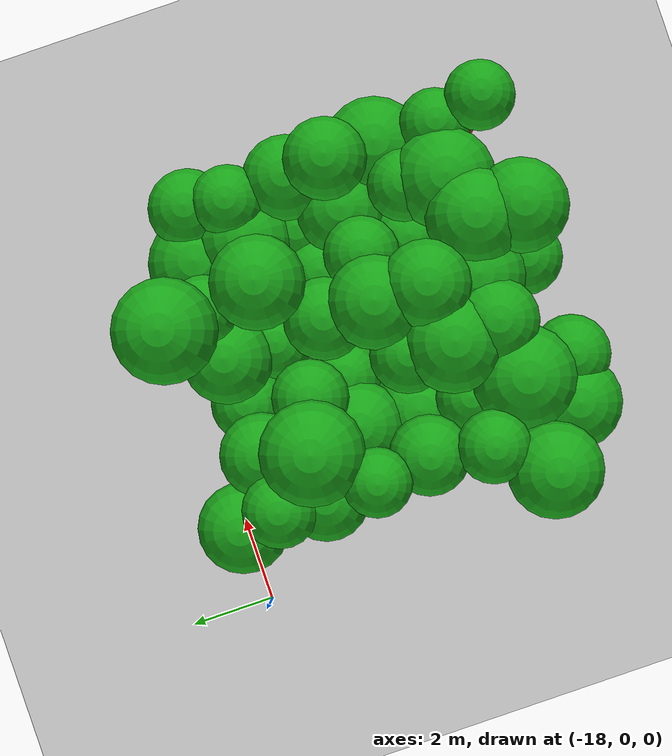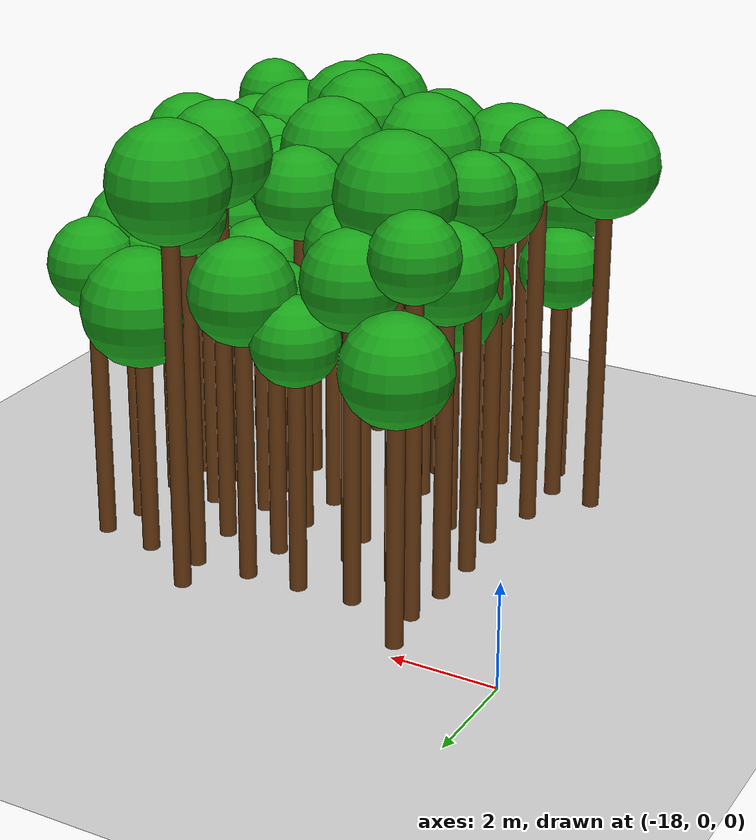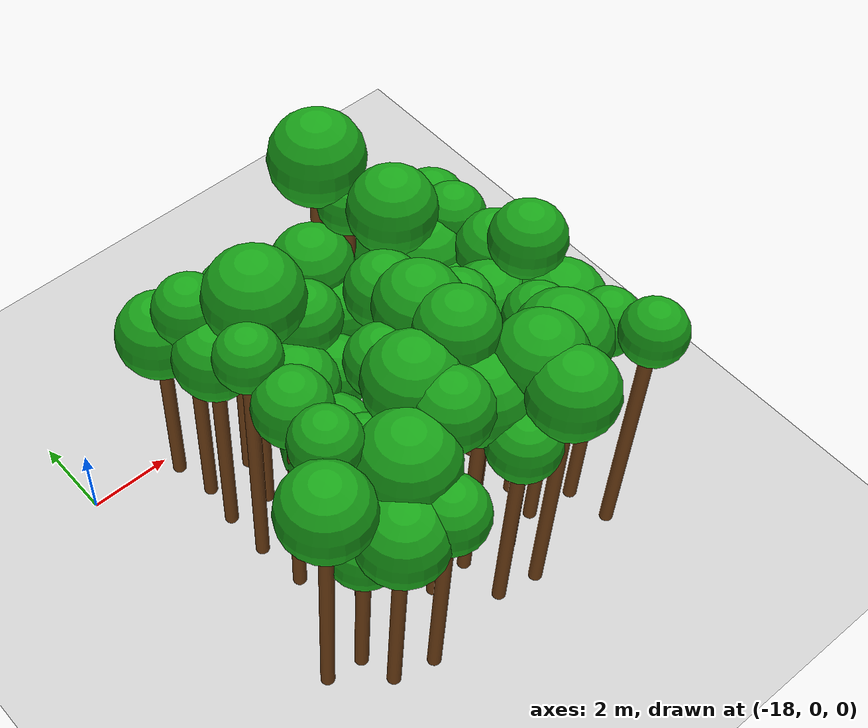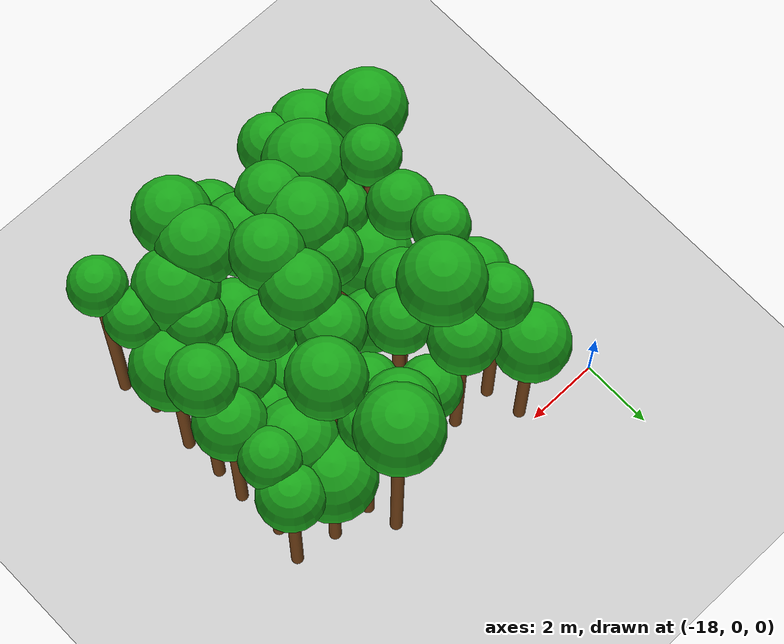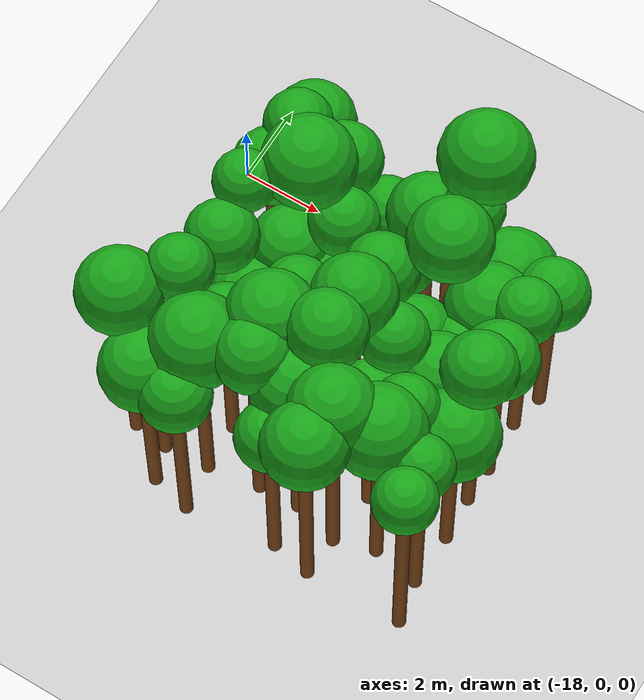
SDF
<sdf version="1.6">
 <world name="forest_world">
  <include><uri>model://sun</uri></include>
  <include><uri>model://ground_plane</uri></include>
  <model name="tree_681_trunk">
   <static>true</static>
   <pose>-16.66 -6.95 3.17 0 0 0</pose>
   <link name="link">
    <collision name="collision">
     <geometry><cylinder><radius>0.16</radius><length>6.33</length></cylinder></geometry>
    </collision>
    <visual name="visual">
     <geometry><cylinder><radius>0.16</radius><length>6.33</length></cylinder></geometry>
     <material><ambient>0.35 0.20 0.05 1</ambient><diffuse>0.45 0.25 0.08 1</diffuse></material>
    </visual>
   </link>
  </model>
  <model name="tree_681_leaf">
   <static>true</static>
   <pose>-16.66 -6.95 6.93 0 0 0</pose>
   <link name="link">
    <collision name="collision"><geometry><sphere><radius>1.00</radius></sphere></geometry></collision>
    <visual name="visual">
     <geometry><sphere><radius>1.00</radius></sphere></geometry>
     <material><ambient>0.05 0.45 0.05 1</ambient><diffuse>0.10 0.65 0.10 1</diffuse></material>
    </visual>
   </link>
  </model>
  <model name="tree_735_trunk">
   <static>true</static>
   <pose>-15.54 -7.87 2.69 0 0 0</pose>
   <link name="link">
    <collision name="collision">
     <geometry><cylinder><radius>0.16</radius><length>5.38</length></cylinder></geometry>
    </collision>
    <visual name="visual">
     <geometry><cylinder><radius>0.16</radius><length>5.38</length></cylinder></geometry>
     <material><ambient>0.35 0.20 0.05 1</ambient><diffuse>0.45 0.25 0.08 1</diffuse></material>
    </visual>
   </link>
  </model>
  <model name="tree_735_leaf">
   <static>true</static>
   <pose>-15.54 -7.87 5.97 0 0 0</pose>
   <link name="link">
    <collision name="collision"><geometry><sphere><radius>0.99</radius></sphere></geometry></collision>
    <visual name="visual">
     <geometry><sphere><radius>0.99</radius></sphere></geometry>
     <material><ambient>0.05 0.45 0.05 1</ambient><diffuse>0.10 0.65 0.10 1</diffuse></material>
    </visual>
   </link>
  </model>
  <model name="tree_736_trunk">
   <static>true</static>
   <pose>-15.79 -7.07 2.13 0 0 0</pose>
   <link name="link">
    <collision name="collision">
     <geometry><cylinder><radius>0.16</radius><length>4.25</length></cylinder></geometry>
    </collision>
    <visual name="visual">
     <geometry><cylinder><radius>0.16</radius><length>4.25</length></cylinder></geometry>
     <material><ambient>0.35 0.20 0.05 1</ambient><diffuse>0.45 0.25 0.08 1</diffuse></material>
    </visual>
   </link>
  </model>
  <model name="tree_736_leaf">
   <static>true</static>
   <pose>-15.79 -7.07 4.74 0 0 0</pose>
   <link name="link">
    <collision name="collision"><geometry><sphere><radius>0.81</radius></sphere></geometry></collision>
    <visual name="visual">
     <geometry><sphere><radius>0.81</radius></sphere></geometry>
     <material><ambient>0.05 0.45 0.05 1</ambient><diffuse>0.10 0.65 0.10 1</diffuse></material>
    </visual>
   </link>
  </model>
  <model name="tree_737_trunk">
   <static>true</static>
   <pose>-15.79 -5.91 3.36 0 0 0</pose>
   <link name="link">
    <collision name="collision">
     <geometry><cylinder><radius>0.16</radius><length>6.73</length></cylinder></geometry>
    </collision>
    <visual name="visual">
     <geometry><cylinder><radius>0.16</radius><length>6.73</length></cylinder></geometry>
     <material><ambient>0.35 0.20 0.05 1</ambient><diffuse>0.45 0.25 0.08 1</diffuse></material>
    </visual>
   </link>
  </model>
  <model name="tree_737_leaf">
   <static>true</static>
   <pose>-15.79 -5.91 7.18 0 0 0</pose>
   <link name="link">
    <collision name="collision"><geometry><sphere><radius>0.76</radius></sphere></geometry></collision>
    <visual name="visual">
     <geometry><sphere><radius>0.76</radius></sphere></geometry>
     <material><ambient>0.05 0.45 0.05 1</ambient><diffuse>0.10 0.65 0.10 1</diffuse></material>
    </visual>
   </link>
  </model>
  <model name="tree_738_trunk">
   <static>true</static>
   <pose>-15.56 -4.63 3.13 0 0 0</pose>
   <link name="link">
    <collision name="collision">
     <geometry><cylinder><radius>0.16</radius><length>6.25</length></cylinder></geometry>
    </collision>
    <visual name="visual">
     <geometry><cylinder><radius>0.16</radius><length>6.25</length></cylinder></geometry>
     <material><ambient>0.35 0.20 0.05 1</ambient><diffuse>0.45 0.25 0.08 1</diffuse></material>
    </visual>
   </link>
  </model>
  <model name="tree_738_leaf">
   <static>true</static>
   <pose>-15.56 -4.63 6.76 0 0 0</pose>
   <link name="link">
    <collision name="collision"><geometry><sphere><radius>0.84</radius></sphere></geometry></collision>
    <visual name="visual">
     <geometry><sphere><radius>0.84</radius></sphere></geometry>
     <material><ambient>0.05 0.45 0.05 1</ambient><diffuse>0.10 0.65 0.10 1</diffuse></material>
    </visual>
   </link>
  </model>
  <model name="tree_739_trunk">
   <static>true</static>
   <pose>-15.71 -3.45 3.42 0 0 0</pose>
   <link name="link">
    <collision name="collision">
     <geometry><cylinder><radius>0.16</radius><length>6.83</length></cylinder></geometry>
    </collision>
    <visual name="visual">
     <geometry><cylinder><radius>0.16</radius><length>6.83</length></cylinder></geometry>
     <material><ambient>0.35 0.20 0.05 1</ambient><diffuse>0.45 0.25 0.08 1</diffuse></material>
    </visual>
   </link>
  </model>
  <model name="tree_739_leaf">
   <static>true</static>
   <pose>-15.71 -3.45 7.27 0 0 0</pose>
   <link name="link">
    <collision name="collision"><geometry><sphere><radius>0.72</radius></sphere></geometry></collision>
    <visual name="visual">
     <geometry><sphere><radius>0.72</radius></sphere></geometry>
     <material><ambient>0.05 0.45 0.05 1</ambient><diffuse>0.10 0.65 0.10 1</diffuse></material>
    </visual>
   </link>
  </model>
  <model name="tree_740_trunk">
   <static>true</static>
   <pose>-15.75 -2.33 2.82 0 0 0</pose>
   <link name="link">
    <collision name="collision">
     <geometry><cylinder><radius>0.16</radius><length>5.63</length></cylinder></geometry>
    </collision>
    <visual name="visual">
     <geometry><cylinder><radius>0.16</radius><length>5.63</length></cylinder></geometry>
     <material><ambient>0.35 0.20 0.05 1</ambient><diffuse>0.45 0.25 0.08 1</diffuse></material>
    </visual>
   </link>
  </model>
  <model name="tree_740_leaf">
   <static>true</static>
   <pose>-15.75 -2.33 6.17 0 0 0</pose>
   <link name="link">
    <collision name="collision"><geometry><sphere><radius>0.90</radius></sphere></geometry></collision>
    <visual name="visual">
     <geometry><sphere><radius>0.90</radius></sphere></geometry>
     <material><ambient>0.05 0.45 0.05 1</ambient><diffuse>0.10 0.65 0.10 1</diffuse></material>
    </visual>
   </link>
  </model>
  <model name="tree_741_trunk">
   <static>true</static>
   <pose>-15.64 -1.38 3.13 0 0 0</pose>
   <link name="link">
    <collision name="collision">
     <geometry><cylinder><radius>0.16</radius><length>6.26</length></cylinder></geometry>
    </collision>
    <visual name="visual">
     <geometry><cylinder><radius>0.16</radius><length>6.26</length></cylinder></geometry>
     <material><ambient>0.35 0.20 0.05 1</ambient><diffuse>0.45 0.25 0.08 1</diffuse></material>
    </visual>
   </link>
  </model>
  <model name="tree_741_leaf">
   <static>true</static>
   <pose>-15.64 -1.38 6.74 0 0 0</pose>
   <link name="link">
    <collision name="collision"><geometry><sphere><radius>0.79</radius></sphere></geometry></collision>
    <visual name="visual">
     <geometry><sphere><radius>0.79</radius></sphere></geometry>
     <material><ambient>0.05 0.45 0.05 1</ambient><diffuse>0.10 0.65 0.10 1</diffuse></material>
    </visual>
   </link>
  </model>
  <model name="tree_742_trunk">
   <static>true</static>
   <pose>-15.84 -0.40 2.28 0 0 0</pose>
   <link name="link">
    <collision name="collision">
     <geometry><cylinder><radius>0.16</radius><length>4.56</length></cylinder></geometry>
    </collision>
    <visual name="visual">
     <geometry><cylinder><radius>0.16</radius><length>4.56</length></cylinder></geometry>
     <material><ambient>0.35 0.20 0.05 1</ambient><diffuse>0.45 0.25 0.08 1</diffuse></material>
    </visual>
   </link>
  </model>
  <model name="tree_742_leaf">
   <static>true</static>
   <pose>-15.84 -0.40 5.14 0 0 0</pose>
   <link name="link">
    <collision name="collision"><geometry><sphere><radius>0.98</radius></sphere></geometry></collision>
    <visual name="visual">
     <geometry><sphere><radius>0.98</radius></sphere></geometry>
     <material><ambient>0.05 0.45 0.05 1</ambient><diffuse>0.10 0.65 0.10 1</diffuse></material>
    </visual>
   </link>
  </model>
  <model name="tree_790_trunk">
   <static>true</static>
   <pose>-14.56 -8.10 2.79 0 0 0</pose>
   <link name="link">
    <collision name="collision">
     <geometry><cylinder><radius>0.16</radius><length>5.59</length></cylinder></geometry>
    </collision>
    <visual name="visual">
     <geometry><cylinder><radius>0.16</radius><length>5.59</length></cylinder></geometry>
     <material><ambient>0.35 0.20 0.05 1</ambient><diffuse>0.45 0.25 0.08 1</diffuse></material>
    </visual>
   </link>
  </model>
  <model name="tree_790_leaf">
   <static>true</static>
   <pose>-14.56 -8.10 6.09 0 0 0</pose>
   <link name="link">
    <collision name="collision"><geometry><sphere><radius>0.83</radius></sphere></geometry></collision>
    <visual name="visual">
     <geometry><sphere><radius>0.83</radius></sphere></geometry>
     <material><ambient>0.05 0.45 0.05 1</ambient><diffuse>0.10 0.65 0.10 1</diffuse></material>
    </visual>
   </link>
  </model>
  <model name="tree_791_trunk">
   <static>true</static>
   <pose>-14.68 -6.98 3.02 0 0 0</pose>
   <link name="link">
    <collision name="collision">
     <geometry><cylinder><radius>0.16</radius><length>6.03</length></cylinder></geometry>
    </collision>
    <visual name="visual">
     <geometry><cylinder><radius>0.16</radius><length>6.03</length></cylinder></geometry>
     <material><ambient>0.35 0.20 0.05 1</ambient><diffuse>0.45 0.25 0.08 1</diffuse></material>
    </visual>
   </link>
  </model>
  <model name="tree_791_leaf">
   <static>true</static>
   <pose>-14.68 -6.98 6.68 0 0 0</pose>
   <link name="link">
    <collision name="collision"><geometry><sphere><radius>1.09</radius></sphere></geometry></collision>
    <visual name="visual">
     <geometry><sphere><radius>1.09</radius></sphere></geometry>
     <material><ambient>0.05 0.45 0.05 1</ambient><diffuse>0.10 0.65 0.10 1</diffuse></material>
    </visual>
   </link>
  </model>
  <model name="tree_792_trunk">
   <static>true</static>
   <pose>-14.73 -5.83 2.73 0 0 0</pose>
   <link name="link">
    <collision name="collision">
     <geometry><cylinder><radius>0.16</radius><length>5.47</length></cylinder></geometry>
    </collision>
    <visual name="visual">
     <geometry><cylinder><radius>0.16</radius><length>5.47</length></cylinder></geometry>
     <material><ambient>0.35 0.20 0.05 1</ambient><diffuse>0.45 0.25 0.08 1</diffuse></material>
    </visual>
   </link>
  </model>
  <model name="tree_792_leaf">
   <static>true</static>
   <pose>-14.73 -5.83 5.90 0 0 0</pose>
   <link name="link">
    <collision name="collision"><geometry><sphere><radius>0.72</radius></sphere></geometry></collision>
    <visual name="visual">
     <geometry><sphere><radius>0.72</radius></sphere></geometry>
     <material><ambient>0.05 0.45 0.05 1</ambient><diffuse>0.10 0.65 0.10 1</diffuse></material>
    </visual>
   </link>
  </model>
  <model name="tree_793_trunk">
   <static>true</static>
   <pose>-14.67 -4.75 2.06 0 0 0</pose>
   <link name="link">
    <collision name="collision">
     <geometry><cylinder><radius>0.16</radius><length>4.12</length></cylinder></geometry>
    </collision>
    <visual name="visual">
     <geometry><cylinder><radius>0.16</radius><length>4.12</length></cylinder></geometry>
     <material><ambient>0.35 0.20 0.05 1</ambient><diffuse>0.45 0.25 0.08 1</diffuse></material>
    </visual>
   </link>
  </model>
  <model name="tree_793_leaf">
   <static>true</static>
   <pose>-14.67 -4.75 4.78 0 0 0</pose>
   <link name="link">
    <collision name="collision"><geometry><sphere><radius>1.09</radius></sphere></geometry></collision>
    <visual name="visual">
     <geometry><sphere><radius>1.09</radius></sphere></geometry>
     <material><ambient>0.05 0.45 0.05 1</ambient><diffuse>0.10 0.65 0.10 1</diffuse></material>
    </visual>
   </link>
  </model>
  <model name="tree_794_trunk">
   <static>true</static>
   <pose>-14.57 -3.46 2.41 0 0 0</pose>
   <link name="link">
    <collision name="collision">
     <geometry><cylinder><radius>0.16</radius><length>4.82</length></cylinder></geometry>
    </collision>
    <visual name="visual">
     <geometry><cylinder><radius>0.16</radius><length>4.82</length></cylinder></geometry>
     <material><ambient>0.35 0.20 0.05 1</ambient><diffuse>0.45 0.25 0.08 1</diffuse></material>
    </visual>
   </link>
  </model>
  <model name="tree_794_leaf">
   <static>true</static>
   <pose>-14.57 -3.46 5.38 0 0 0</pose>
   <link name="link">
    <collision name="collision"><geometry><sphere><radius>0.95</radius></sphere></geometry></collision>
    <visual name="visual">
     <geometry><sphere><radius>0.95</radius></sphere></geometry>
     <material><ambient>0.05 0.45 0.05 1</ambient><diffuse>0.10 0.65 0.10 1</diffuse></material>
    </visual>
   </link>
  </model>
  <model name="tree_795_trunk">
   <static>true</static>
   <pose>-14.73 -2.40 3.37 0 0 0</pose>
   <link name="link">
    <collision name="collision">
     <geometry><cylinder><radius>0.16</radius><length>6.75</length></cylinder></geometry>
    </collision>
    <visual name="visual">
     <geometry><cylinder><radius>0.16</radius><length>6.75</length></cylinder></geometry>
     <material><ambient>0.35 0.20 0.05 1</ambient><diffuse>0.45 0.25 0.08 1</diffuse></material>
    </visual>
   </link>
  </model>
  <model name="tree_795_leaf">
   <static>true</static>
   <pose>-14.73 -2.40 7.40 0 0 0</pose>
   <link name="link">
    <collision name="collision"><geometry><sphere><radius>1.08</radius></sphere></geometry></collision>
    <visual name="visual">
     <geometry><sphere><radius>1.08</radius></sphere></geometry>
     <material><ambient>0.05 0.45 0.05 1</ambient><diffuse>0.10 0.65 0.10 1</diffuse></material>
    </visual>
   </link>
  </model>
  <model name="tree_796_trunk">
   <static>true</static>
   <pose>-14.47 -1.35 2.80 0 0 0</pose>
   <link name="link">
    <collision name="collision">
     <geometry><cylinder><radius>0.16</radius><length>5.60</length></cylinder></geometry>
    </collision>
    <visual name="visual">
     <geometry><cylinder><radius>0.16</radius><length>5.60</length></cylinder></geometry>
     <material><ambient>0.35 0.20 0.05 1</ambient><diffuse>0.45 0.25 0.08 1</diffuse></material>
    </visual>
   </link>
  </model>
  <model name="tree_796_leaf">
   <static>true</static>
   <pose>-14.47 -1.35 6.14 0 0 0</pose>
   <link name="link">
    <collision name="collision"><geometry><sphere><radius>0.89</radius></sphere></geometry></collision>
    <visual name="visual">
     <geometry><sphere><radius>0.89</radius></sphere></geometry>
     <material><ambient>0.05 0.45 0.05 1</ambient><diffuse>0.10 0.65 0.10 1</diffuse></material>
    </visual>
   </link>
  </model>
  <model name="tree_846_trunk">
   <static>true</static>
   <pose>-13.40 -6.78 3.25 0 0 0</pose>
   <link name="link">
    <collision name="collision">
     <geometry><cylinder><radius>0.16</radius><length>6.51</length></cylinder></geometry>
    </collision>
    <visual name="visual">
     <geometry><cylinder><radius>0.16</radius><length>6.51</length></cylinder></geometry>
     <material><ambient>0.35 0.20 0.05 1</ambient><diffuse>0.45 0.25 0.08 1</diffuse></material>
    </visual>
   </link>
  </model>
  <model name="tree_846_leaf">
   <static>true</static>
   <pose>-13.40 -6.78 7.04 0 0 0</pose>
   <link name="link">
    <collision name="collision"><geometry><sphere><radius>0.89</radius></sphere></geometry></collision>
    <visual name="visual">
     <geometry><sphere><radius>0.89</radius></sphere></geometry>
     <material><ambient>0.05 0.45 0.05 1</ambient><diffuse>0.10 0.65 0.10 1</diffuse></material>
    </visual>
   </link>
  </model>
  <model name="tree_847_trunk">
   <static>true</static>
   <pose>-13.54 -5.82 3.22 0 0 0</pose>
   <link name="link">
    <collision name="collision">
     <geometry><cylinder><radius>0.16</radius><length>6.45</length></cylinder></geometry>
    </collision>
    <visual name="visual">
     <geometry><cylinder><radius>0.16</radius><length>6.45</length></cylinder></geometry>
     <material><ambient>0.35 0.20 0.05 1</ambient><diffuse>0.45 0.25 0.08 1</diffuse></material>
    </visual>
   </link>
  </model>
  <model name="tree_847_leaf">
   <static>true</static>
   <pose>-13.54 -5.82 7.07 0 0 0</pose>
   <link name="link">
    <collision name="collision"><geometry><sphere><radius>1.04</radius></sphere></geometry></collision>
    <visual name="visual">
     <geometry><sphere><radius>1.04</radius></sphere></geometry>
     <material><ambient>0.05 0.45 0.05 1</ambient><diffuse>0.10 0.65 0.10 1</diffuse></material>
    </visual>
   </link>
  </model>
  <model name="tree_848_trunk">
   <static>true</static>
   <pose>-13.48 -4.88 3.12 0 0 0</pose>
   <link name="link">
    <collision name="collision">
     <geometry><cylinder><radius>0.16</radius><length>6.24</length></cylinder></geometry>
    </collision>
    <visual name="visual">
     <geometry><cylinder><radius>0.16</radius><length>6.24</length></cylinder></geometry>
     <material><ambient>0.35 0.20 0.05 1</ambient><diffuse>0.45 0.25 0.08 1</diffuse></material>
    </visual>
   </link>
  </model>
  <model name="tree_848_leaf">
   <static>true</static>
   <pose>-13.48 -4.88 6.72 0 0 0</pose>
   <link name="link">
    <collision name="collision"><geometry><sphere><radius>0.80</radius></sphere></geometry></collision>
    <visual name="visual">
     <geometry><sphere><radius>0.80</radius></sphere></geometry>
     <material><ambient>0.05 0.45 0.05 1</ambient><diffuse>0.10 0.65 0.10 1</diffuse></material>
    </visual>
   </link>
  </model>
  <model name="tree_849_trunk">
   <static>true</static>
   <pose>-13.49 -3.49 2.25 0 0 0</pose>
   <link name="link">
    <collision name="collision">
     <geometry><cylinder><radius>0.16</radius><length>4.50</length></cylinder></geometry>
    </collision>
    <visual name="visual">
     <geometry><cylinder><radius>0.16</radius><length>4.50</length></cylinder></geometry>
     <material><ambient>0.35 0.20 0.05 1</ambient><diffuse>0.45 0.25 0.08 1</diffuse></material>
    </visual>
   </link>
  </model>
  <model name="tree_849_leaf">
   <static>true</static>
   <pose>-13.49 -3.49 4.98 0 0 0</pose>
   <link name="link">
    <collision name="collision"><geometry><sphere><radius>0.80</radius></sphere></geometry></collision>
    <visual name="visual">
     <geometry><sphere><radius>0.80</radius></sphere></geometry>
     <material><ambient>0.05 0.45 0.05 1</ambient><diffuse>0.10 0.65 0.10 1</diffuse></material>
    </visual>
   </link>
  </model>
  <model name="tree_850_trunk">
   <static>true</static>
   <pose>-13.67 -2.68 2.84 0 0 0</pose>
   <link name="link">
    <collision name="collision">
     <geometry><cylinder><radius>0.16</radius><length>5.67</length></cylinder></geometry>
    </collision>
    <visual name="visual">
     <geometry><cylinder><radius>0.16</radius><length>5.67</length></cylinder></geometry>
     <material><ambient>0.35 0.20 0.05 1</ambient><diffuse>0.45 0.25 0.08 1</diffuse></material>
    </visual>
   </link>
  </model>
  <model name="tree_850_leaf">
   <static>true</static>
   <pose>-13.67 -2.68 6.16 0 0 0</pose>
   <link name="link">
    <collision name="collision"><geometry><sphere><radius>0.81</radius></sphere></geometry></collision>
    <visual name="visual">
     <geometry><sphere><radius>0.81</radius></sphere></geometry>
     <material><ambient>0.05 0.45 0.05 1</ambient><diffuse>0.10 0.65 0.10 1</diffuse></material>
    </visual>
   </link>
  </model>
  <model name="tree_851_trunk">
   <static>true</static>
   <pose>-13.37 -1.33 2.16 0 0 0</pose>
   <link name="link">
    <collision name="collision">
     <geometry><cylinder><radius>0.16</radius><length>4.33</length></cylinder></geometry>
    </collision>
    <visual name="visual">
     <geometry><cylinder><radius>0.16</radius><length>4.33</length></cylinder></geometry>
     <material><ambient>0.35 0.20 0.05 1</ambient><diffuse>0.45 0.25 0.08 1</diffuse></material>
    </visual>
   </link>
  </model>
  <model name="tree_851_leaf">
   <static>true</static>
   <pose>-13.37 -1.33 4.81 0 0 0</pose>
   <link name="link">
    <collision name="collision"><geometry><sphere><radius>0.81</radius></sphere></geometry></collision>
    <visual name="visual">
     <geometry><sphere><radius>0.81</radius></sphere></geometry>
     <material><ambient>0.05 0.45 0.05 1</ambient><diffuse>0.10 0.65 0.10 1</diffuse></material>
    </visual>
   </link>
  </model>
  <model name="tree_900_trunk">
   <static>true</static>
   <pose>-12.34 -7.83 2.79 0 0 0</pose>
   <link name="link">
    <collision name="collision">
     <geometry><cylinder><radius>0.16</radius><length>5.57</length></cylinder></geometry>
    </collision>
    <visual name="visual">
     <geometry><cylinder><radius>0.16</radius><length>5.57</length></cylinder></geometry>
     <material><ambient>0.35 0.20 0.05 1</ambient><diffuse>0.45 0.25 0.08 1</diffuse></material>
    </visual>
   </link>
  </model>
  <model name="tree_900_leaf">
   <static>true</static>
   <pose>-12.34 -7.83 6.05 0 0 0</pose>
   <link name="link">
    <collision name="collision"><geometry><sphere><radius>0.80</radius></sphere></geometry></collision>
    <visual name="visual">
     <geometry><sphere><radius>0.80</radius></sphere></geometry>
     <material><ambient>0.05 0.45 0.05 1</ambient><diffuse>0.10 0.65 0.10 1</diffuse></material>
    </visual>
   </link>
  </model>
  <model name="tree_901_trunk">
   <static>true</static>
   <pose>-12.40 -6.73 2.95 0 0 0</pose>
   <link name="link">
    <collision name="collision">
     <geometry><cylinder><radius>0.16</radius><length>5.90</length></cylinder></geometry>
    </collision>
    <visual name="visual">
     <geometry><cylinder><radius>0.16</radius><length>5.90</length></cylinder></geometry>
     <material><ambient>0.35 0.20 0.05 1</ambient><diffuse>0.45 0.25 0.08 1</diffuse></material>
    </visual>
   </link>
  </model>
  <model name="tree_901_leaf">
   <static>true</static>
   <pose>-12.40 -6.73 6.52 0 0 0</pose>
   <link name="link">
    <collision name="collision"><geometry><sphere><radius>1.03</radius></sphere></geometry></collision>
    <visual name="visual">
     <geometry><sphere><radius>1.03</radius></sphere></geometry>
     <material><ambient>0.05 0.45 0.05 1</ambient><diffuse>0.10 0.65 0.10 1</diffuse></material>
    </visual>
   </link>
  </model>
  <model name="tree_902_trunk">
   <static>true</static>
   <pose>-12.26 -5.66 3.48 0 0 0</pose>
   <link name="link">
    <collision name="collision">
     <geometry><cylinder><radius>0.16</radius><length>6.95</length></cylinder></geometry>
    </collision>
    <visual name="visual">
     <geometry><cylinder><radius>0.16</radius><length>6.95</length></cylinder></geometry>
     <material><ambient>0.35 0.20 0.05 1</ambient><diffuse>0.45 0.25 0.08 1</diffuse></material>
    </visual>
   </link>
  </model>
  <model name="tree_902_leaf">
   <static>true</static>
   <pose>-12.26 -5.66 7.50 0 0 0</pose>
   <link name="link">
    <collision name="collision"><geometry><sphere><radius>0.91</radius></sphere></geometry></collision>
    <visual name="visual">
     <geometry><sphere><radius>0.91</radius></sphere></geometry>
     <material><ambient>0.05 0.45 0.05 1</ambient><diffuse>0.10 0.65 0.10 1</diffuse></material>
    </visual>
   </link>
  </model>
  <model name="tree_903_trunk">
   <static>true</static>
   <pose>-12.26 -4.57 3.31 0 0 0</pose>
   <link name="link">
    <collision name="collision">
     <geometry><cylinder><radius>0.16</radius><length>6.62</length></cylinder></geometry>
    </collision>
    <visual name="visual">
     <geometry><cylinder><radius>0.16</radius><length>6.62</length></cylinder></geometry>
     <material><ambient>0.35 0.20 0.05 1</ambient><diffuse>0.45 0.25 0.08 1</diffuse></material>
    </visual>
   </link>
  </model>
  <model name="tree_903_leaf">
   <static>true</static>
   <pose>-12.26 -4.57 7.20 0 0 0</pose>
   <link name="link">
    <collision name="collision"><geometry><sphere><radius>0.97</radius></sphere></geometry></collision>
    <visual name="visual">
     <geometry><sphere><radius>0.97</radius></sphere></geometry>
     <material><ambient>0.05 0.45 0.05 1</ambient><diffuse>0.10 0.65 0.10 1</diffuse></material>
    </visual>
   </link>
  </model>
  <model name="tree_904_trunk">
   <static>true</static>
   <pose>-12.23 -3.50 3.08 0 0 0</pose>
   <link name="link">
    <collision name="collision">
     <geometry><cylinder><radius>0.16</radius><length>6.16</length></cylinder></geometry>
    </collision>
    <visual name="visual">
     <geometry><cylinder><radius>0.16</radius><length>6.16</length></cylinder></geometry>
     <material><ambient>0.35 0.20 0.05 1</ambient><diffuse>0.45 0.25 0.08 1</diffuse></material>
    </visual>
   </link>
  </model>
  <model name="tree_904_leaf">
   <static>true</static>
   <pose>-12.23 -3.50 6.68 0 0 0</pose>
   <link name="link">
    <collision name="collision"><geometry><sphere><radius>0.86</radius></sphere></geometry></collision>
    <visual name="visual">
     <geometry><sphere><radius>0.86</radius></sphere></geometry>
     <material><ambient>0.05 0.45 0.05 1</ambient><diffuse>0.10 0.65 0.10 1</diffuse></material>
    </visual>
   </link>
  </model>
  <model name="tree_905_trunk">
   <static>true</static>
   <pose>-12.34 -2.35 2.27 0 0 0</pose>
   <link name="link">
    <collision name="collision">
     <geometry><cylinder><radius>0.16</radius><length>4.54</length></cylinder></geometry>
    </collision>
    <visual name="visual">
     <geometry><cylinder><radius>0.16</radius><length>4.54</length></cylinder></geometry>
     <material><ambient>0.35 0.20 0.05 1</ambient><diffuse>0.45 0.25 0.08 1</diffuse></material>
    </visual>
   </link>
  </model>
  <model name="tree_905_leaf">
   <static>true</static>
   <pose>-12.34 -2.35 5.00 0 0 0</pose>
   <link name="link">
    <collision name="collision"><geometry><sphere><radius>0.77</radius></sphere></geometry></collision>
    <visual name="visual">
     <geometry><sphere><radius>0.77</radius></sphere></geometry>
     <material><ambient>0.05 0.45 0.05 1</ambient><diffuse>0.10 0.65 0.10 1</diffuse></material>
    </visual>
   </link>
  </model>
  <model name="tree_906_trunk">
   <static>true</static>
   <pose>-12.34 -1.27 2.49 0 0 0</pose>
   <link name="link">
    <collision name="collision">
     <geometry><cylinder><radius>0.16</radius><length>4.98</length></cylinder></geometry>
    </collision>
    <visual name="visual">
     <geometry><cylinder><radius>0.16</radius><length>4.98</length></cylinder></geometry>
     <material><ambient>0.35 0.20 0.05 1</ambient><diffuse>0.45 0.25 0.08 1</diffuse></material>
    </visual>
   </link>
  </model>
  <model name="tree_906_leaf">
   <static>true</static>
   <pose>-12.34 -1.27 5.55 0 0 0</pose>
   <link name="link">
    <collision name="collision"><geometry><sphere><radius>0.96</radius></sphere></geometry></collision>
    <visual name="visual">
     <geometry><sphere><radius>0.96</radius></sphere></geometry>
     <material><ambient>0.05 0.45 0.05 1</ambient><diffuse>0.10 0.65 0.10 1</diffuse></material>
    </visual>
   </link>
  </model>
  <model name="tree_955_trunk">
   <static>true</static>
   <pose>-11.36 -8.01 3.24 0 0 0</pose>
   <link name="link">
    <collision name="collision">
     <geometry><cylinder><radius>0.16</radius><length>6.48</length></cylinder></geometry>
    </collision>
    <visual name="visual">
     <geometry><cylinder><radius>0.16</radius><length>6.48</length></cylinder></geometry>
     <material><ambient>0.35 0.20 0.05 1</ambient><diffuse>0.45 0.25 0.08 1</diffuse></material>
    </visual>
   </link>
  </model>
  <model name="tree_955_leaf">
   <static>true</static>
   <pose>-11.36 -8.01 7.07 0 0 0</pose>
   <link name="link">
    <collision name="collision"><geometry><sphere><radius>0.98</radius></sphere></geometry></collision>
    <visual name="visual">
     <geometry><sphere><radius>0.98</radius></sphere></geometry>
     <material><ambient>0.05 0.45 0.05 1</ambient><diffuse>0.10 0.65 0.10 1</diffuse></material>
    </visual>
   </link>
  </model>
  <model name="tree_956_trunk">
   <static>true</static>
   <pose>-11.28 -7.03 3.25 0 0 0</pose>
   <link name="link">
    <collision name="collision">
     <geometry><cylinder><radius>0.16</radius><length>6.51</length></cylinder></geometry>
    </collision>
    <visual name="visual">
     <geometry><cylinder><radius>0.16</radius><length>6.51</length></cylinder></geometry>
     <material><ambient>0.35 0.20 0.05 1</ambient><diffuse>0.45 0.25 0.08 1</diffuse></material>
    </visual>
   </link>
  </model>
  <model name="tree_956_leaf">
   <static>true</static>
   <pose>-11.28 -7.03 7.12 0 0 0</pose>
   <link name="link">
    <collision name="collision"><geometry><sphere><radius>1.01</radius></sphere></geometry></collision>
    <visual name="visual">
     <geometry><sphere><radius>1.01</radius></sphere></geometry>
     <material><ambient>0.05 0.45 0.05 1</ambient><diffuse>0.10 0.65 0.10 1</diffuse></material>
    </visual>
   </link>
  </model>
  <model name="tree_957_trunk">
   <static>true</static>
   <pose>-11.14 -5.71 2.51 0 0 0</pose>
   <link name="link">
    <collision name="collision">
     <geometry><cylinder><radius>0.16</radius><length>5.02</length></cylinder></geometry>
    </collision>
    <visual name="visual">
     <geometry><cylinder><radius>0.16</radius><length>5.02</length></cylinder></geometry>
     <material><ambient>0.35 0.20 0.05 1</ambient><diffuse>0.45 0.25 0.08 1</diffuse></material>
    </visual>
   </link>
  </model>
  <model name="tree_957_leaf">
   <static>true</static>
   <pose>-11.14 -5.71 5.52 0 0 0</pose>
   <link name="link">
    <collision name="collision"><geometry><sphere><radius>0.84</radius></sphere></geometry></collision>
    <visual name="visual">
     <geometry><sphere><radius>0.84</radius></sphere></geometry>
     <material><ambient>0.05 0.45 0.05 1</ambient><diffuse>0.10 0.65 0.10 1</diffuse></material>
    </visual>
   </link>
  </model>
  <model name="tree_958_trunk">
   <static>true</static>
   <pose>-11.21 -4.64 3.00 0 0 0</pose>
   <link name="link">
    <collision name="collision">
     <geometry><cylinder><radius>0.16</radius><length>6.00</length></cylinder></geometry>
    </collision>
    <visual name="visual">
     <geometry><cylinder><radius>0.16</radius><length>6.00</length></cylinder></geometry>
     <material><ambient>0.35 0.20 0.05 1</ambient><diffuse>0.45 0.25 0.08 1</diffuse></material>
    </visual>
   </link>
  </model>
  <model name="tree_958_leaf">
   <static>true</static>
   <pose>-11.21 -4.64 6.48 0 0 0</pose>
   <link name="link">
    <collision name="collision"><geometry><sphere><radius>0.79</radius></sphere></geometry></collision>
    <visual name="visual">
     <geometry><sphere><radius>0.79</radius></sphere></geometry>
     <material><ambient>0.05 0.45 0.05 1</ambient><diffuse>0.10 0.65 0.10 1</diffuse></material>
    </visual>
   </link>
  </model>
  <model name="tree_959_trunk">
   <static>true</static>
   <pose>-11.21 -3.72 2.25 0 0 0</pose>
   <link name="link">
    <collision name="collision">
     <geometry><cylinder><radius>0.16</radius><length>4.49</length></cylinder></geometry>
    </collision>
    <visual name="visual">
     <geometry><cylinder><radius>0.16</radius><length>4.49</length></cylinder></geometry>
     <material><ambient>0.35 0.20 0.05 1</ambient><diffuse>0.45 0.25 0.08 1</diffuse></material>
    </visual>
   </link>
  </model>
  <model name="tree_959_leaf">
   <static>true</static>
   <pose>-11.21 -3.72 5.03 0 0 0</pose>
   <link name="link">
    <collision name="collision"><geometry><sphere><radius>0.90</radius></sphere></geometry></collision>
    <visual name="visual">
     <geometry><sphere><radius>0.90</radius></sphere></geometry>
     <material><ambient>0.05 0.45 0.05 1</ambient><diffuse>0.10 0.65 0.10 1</diffuse></material>
    </visual>
   </link>
  </model>
  <model name="tree_960_trunk">
   <static>true</static>
   <pose>-11.14 -2.47 3.46 0 0 0</pose>
   <link name="link">
    <collision name="collision">
     <geometry><cylinder><radius>0.16</radius><length>6.92</length></cylinder></geometry>
    </collision>
    <visual name="visual">
     <geometry><cylinder><radius>0.16</radius><length>6.92</length></cylinder></geometry>
     <material><ambient>0.35 0.20 0.05 1</ambient><diffuse>0.45 0.25 0.08 1</diffuse></material>
    </visual>
   </link>
  </model>
  <model name="tree_960_leaf">
   <static>true</static>
   <pose>-11.14 -2.47 7.51 0 0 0</pose>
   <link name="link">
    <collision name="collision"><geometry><sphere><radius>0.97</radius></sphere></geometry></collision>
    <visual name="visual">
     <geometry><sphere><radius>0.97</radius></sphere></geometry>
     <material><ambient>0.05 0.45 0.05 1</ambient><diffuse>0.10 0.65 0.10 1</diffuse></material>
    </visual>
   </link>
  </model>
  <model name="tree_961_trunk">
   <static>true</static>
   <pose>-11.26 -1.23 3.17 0 0 0</pose>
   <link name="link">
    <collision name="collision">
     <geometry><cylinder><radius>0.16</radius><length>6.34</length></cylinder></geometry>
    </collision>
    <visual name="visual">
     <geometry><cylinder><radius>0.16</radius><length>6.34</length></cylinder></geometry>
     <material><ambient>0.35 0.20 0.05 1</ambient><diffuse>0.45 0.25 0.08 1</diffuse></material>
    </visual>
   </link>
  </model>
  <model name="tree_961_leaf">
   <static>true</static>
   <pose>-11.26 -1.23 6.77 0 0 0</pose>
   <link name="link">
    <collision name="collision"><geometry><sphere><radius>0.71</radius></sphere></geometry></collision>
    <visual name="visual">
     <geometry><sphere><radius>0.71</radius></sphere></geometry>
     <material><ambient>0.05 0.45 0.05 1</ambient><diffuse>0.10 0.65 0.10 1</diffuse></material>
    </visual>
   </link>
  </model>
  <model name="tree_962_trunk">
   <static>true</static>
   <pose>-11.47 -0.42 3.49 0 0 0</pose>
   <link name="link">
    <collision name="collision">
     <geometry><cylinder><radius>0.16</radius><length>6.99</length></cylinder></geometry>
    </collision>
    <visual name="visual">
     <geometry><cylinder><radius>0.16</radius><length>6.99</length></cylinder></geometry>
     <material><ambient>0.35 0.20 0.05 1</ambient><diffuse>0.45 0.25 0.08 1</diffuse></material>
    </visual>
   </link>
  </model>
  <model name="tree_962_leaf">
   <static>true</static>
   <pose>-11.47 -0.42 7.64 0 0 0</pose>
   <link name="link">
    <collision name="collision"><geometry><sphere><radius>1.08</radius></sphere></geometry></collision>
    <visual name="visual">
     <geometry><sphere><radius>1.08</radius></sphere></geometry>
     <material><ambient>0.05 0.45 0.05 1</ambient><diffuse>0.10 0.65 0.10 1</diffuse></material>
    </visual>
   </link>
  </model>
  <model name="tree_1011_trunk">
   <static>true</static>
   <pose>-10.30 -6.74 2.99 0 0 0</pose>
   <link name="link">
    <collision name="collision">
     <geometry><cylinder><radius>0.16</radius><length>5.97</length></cylinder></geometry>
    </collision>
    <visual name="visual">
     <geometry><cylinder><radius>0.16</radius><length>5.97</length></cylinder></geometry>
     <material><ambient>0.35 0.20 0.05 1</ambient><diffuse>0.45 0.25 0.08 1</diffuse></material>
    </visual>
   </link>
  </model>
  <model name="tree_1011_leaf">
   <static>true</static>
   <pose>-10.30 -6.74 6.62 0 0 0</pose>
   <link name="link">
    <collision name="collision"><geometry><sphere><radius>1.07</radius></sphere></geometry></collision>
    <visual name="visual">
     <geometry><sphere><radius>1.07</radius></sphere></geometry>
     <material><ambient>0.05 0.45 0.05 1</ambient><diffuse>0.10 0.65 0.10 1</diffuse></material>
    </visual>
   </link>
  </model>
  <model name="tree_1012_trunk">
   <static>true</static>
   <pose>-10.15 -5.92 2.99 0 0 0</pose>
   <link name="link">
    <collision name="collision">
     <geometry><cylinder><radius>0.16</radius><length>5.99</length></cylinder></geometry>
    </collision>
    <visual name="visual">
     <geometry><cylinder><radius>0.16</radius><length>5.99</length></cylinder></geometry>
     <material><ambient>0.35 0.20 0.05 1</ambient><diffuse>0.45 0.25 0.08 1</diffuse></material>
    </visual>
   </link>
  </model>
  <model name="tree_1012_leaf">
   <static>true</static>
   <pose>-10.15 -5.92 6.45 0 0 0</pose>
   <link name="link">
    <collision name="collision"><geometry><sphere><radius>0.76</radius></sphere></geometry></collision>
    <visual name="visual">
     <geometry><sphere><radius>0.76</radius></sphere></geometry>
     <material><ambient>0.05 0.45 0.05 1</ambient><diffuse>0.10 0.65 0.10 1</diffuse></material>
    </visual>
   </link>
  </model>
  <model name="tree_1013_trunk">
   <static>true</static>
   <pose>-10.15 -4.55 2.50 0 0 0</pose>
   <link name="link">
    <collision name="collision">
     <geometry><cylinder><radius>0.16</radius><length>5.00</length></cylinder></geometry>
    </collision>
    <visual name="visual">
     <geometry><cylinder><radius>0.16</radius><length>5.00</length></cylinder></geometry>
     <material><ambient>0.35 0.20 0.05 1</ambient><diffuse>0.45 0.25 0.08 1</diffuse></material>
    </visual>
   </link>
  </model>
  <model name="tree_1013_leaf">
   <static>true</static>
   <pose>-10.15 -4.55 5.58 0 0 0</pose>
   <link name="link">
    <collision name="collision"><geometry><sphere><radius>0.98</radius></sphere></geometry></collision>
    <visual name="visual">
     <geometry><sphere><radius>0.98</radius></sphere></geometry>
     <material><ambient>0.05 0.45 0.05 1</ambient><diffuse>0.10 0.65 0.10 1</diffuse></material>
    </visual>
   </link>
  </model>
  <model name="tree_1014_trunk">
   <static>true</static>
   <pose>-10.16 -3.54 2.12 0 0 0</pose>
   <link name="link">
    <collision name="collision">
     <geometry><cylinder><radius>0.16</radius><length>4.25</length></cylinder></geometry>
    </collision>
    <visual name="visual">
     <geometry><cylinder><radius>0.16</radius><length>4.25</length></cylinder></geometry>
     <material><ambient>0.35 0.20 0.05 1</ambient><diffuse>0.45 0.25 0.08 1</diffuse></material>
    </visual>
   </link>
  </model>
  <model name="tree_1014_leaf">
   <static>true</static>
   <pose>-10.16 -3.54 4.83 0 0 0</pose>
   <link name="link">
    <collision name="collision"><geometry><sphere><radius>0.98</radius></sphere></geometry></collision>
    <visual name="visual">
     <geometry><sphere><radius>0.98</radius></sphere></geometry>
     <material><ambient>0.05 0.45 0.05 1</ambient><diffuse>0.10 0.65 0.10 1</diffuse></material>
    </visual>
   </link>
  </model>
  <model name="tree_1015_trunk">
   <static>true</static>
   <pose>-10.07 -2.44 2.33 0 0 0</pose>
   <link name="link">
    <collision name="collision">
     <geometry><cylinder><radius>0.16</radius><length>4.66</length></cylinder></geometry>
    </collision>
    <visual name="visual">
     <geometry><cylinder><radius>0.16</radius><length>4.66</length></cylinder></geometry>
     <material><ambient>0.35 0.20 0.05 1</ambient><diffuse>0.45 0.25 0.08 1</diffuse></material>
    </visual>
   </link>
  </model>
  <model name="tree_1015_leaf">
   <static>true</static>
   <pose>-10.07 -2.44 5.29 0 0 0</pose>
   <link name="link">
    <collision name="collision"><geometry><sphere><radius>1.05</radius></sphere></geometry></collision>
    <visual name="visual">
     <geometry><sphere><radius>1.05</radius></sphere></geometry>
     <material><ambient>0.05 0.45 0.05 1</ambient><diffuse>0.10 0.65 0.10 1</diffuse></material>
    </visual>
   </link>
  </model>
  <model name="tree_1016_trunk">
   <static>true</static>
   <pose>-10.18 -1.30 2.09 0 0 0</pose>
   <link name="link">
    <collision name="collision">
     <geometry><cylinder><radius>0.16</radius><length>4.18</length></cylinder></geometry>
    </collision>
    <visual name="visual">
     <geometry><cylinder><radius>0.16</radius><length>4.18</length></cylinder></geometry>
     <material><ambient>0.35 0.20 0.05 1</ambient><diffuse>0.45 0.25 0.08 1</diffuse></material>
    </visual>
   </link>
  </model>
  <model name="tree_1016_leaf">
   <static>true</static>
   <pose>-10.18 -1.30 4.84 0 0 0</pose>
   <link name="link">
    <collision name="collision"><geometry><sphere><radius>1.10</radius></sphere></geometry></collision>
    <visual name="visual">
     <geometry><sphere><radius>1.10</radius></sphere></geometry>
     <material><ambient>0.05 0.45 0.05 1</ambient><diffuse>0.10 0.65 0.10 1</diffuse></material>
    </visual>
   </link>
  </model>
  <model name="tree_1065_trunk">
   <static>true</static>
   <pose>-8.97 -7.94 3.25 0 0 0</pose>
   <link name="link">
    <collision name="collision">
     <geometry><cylinder><radius>0.16</radius><length>6.50</length></cylinder></geometry>
    </collision>
    <visual name="visual">
     <geometry><cylinder><radius>0.16</radius><length>6.50</length></cylinder></geometry>
     <material><ambient>0.35 0.20 0.05 1</ambient><diffuse>0.45 0.25 0.08 1</diffuse></material>
    </visual>
   </link>
  </model>
  <model name="tree_1065_leaf">
   <static>true</static>
   <pose>-8.97 -7.94 6.94 0 0 0</pose>
   <link name="link">
    <collision name="collision"><geometry><sphere><radius>0.73</radius></sphere></geometry></collision>
    <visual name="visual">
     <geometry><sphere><radius>0.73</radius></sphere></geometry>
     <material><ambient>0.05 0.45 0.05 1</ambient><diffuse>0.10 0.65 0.10 1</diffuse></material>
    </visual>
   </link>
  </model>
  <model name="tree_1066_trunk">
   <static>true</static>
   <pose>-9.16 -6.93 3.02 0 0 0</pose>
   <link name="link">
    <collision name="collision">
     <geometry><cylinder><radius>0.16</radius><length>6.03</length></cylinder></geometry>
    </collision>
    <visual name="visual">
     <geometry><cylinder><radius>0.16</radius><length>6.03</length></cylinder></geometry>
     <material><ambient>0.35 0.20 0.05 1</ambient><diffuse>0.45 0.25 0.08 1</diffuse></material>
    </visual>
   </link>
  </model>
  <model name="tree_1066_leaf">
   <static>true</static>
   <pose>-9.16 -6.93 6.47 0 0 0</pose>
   <link name="link">
    <collision name="collision"><geometry><sphere><radius>0.74</radius></sphere></geometry></collision>
    <visual name="visual">
     <geometry><sphere><radius>0.74</radius></sphere></geometry>
     <material><ambient>0.05 0.45 0.05 1</ambient><diffuse>0.10 0.65 0.10 1</diffuse></material>
    </visual>
   </link>
  </model>
  <model name="tree_1067_trunk">
   <static>true</static>
   <pose>-9.11 -5.63 2.55 0 0 0</pose>
   <link name="link">
    <collision name="collision">
     <geometry><cylinder><radius>0.16</radius><length>5.10</length></cylinder></geometry>
    </collision>
    <visual name="visual">
     <geometry><cylinder><radius>0.16</radius><length>5.10</length></cylinder></geometry>
     <material><ambient>0.35 0.20 0.05 1</ambient><diffuse>0.45 0.25 0.08 1</diffuse></material>
    </visual>
   </link>
  </model>
  <model name="tree_1067_leaf">
   <static>true</static>
   <pose>-9.11 -5.63 5.73 0 0 0</pose>
   <link name="link">
    <collision name="collision"><geometry><sphere><radius>1.05</radius></sphere></geometry></collision>
    <visual name="visual">
     <geometry><sphere><radius>1.05</radius></sphere></geometry>
     <material><ambient>0.05 0.45 0.05 1</ambient><diffuse>0.10 0.65 0.10 1</diffuse></material>
    </visual>
   </link>
  </model>
  <model name="tree_1068_trunk">
   <static>true</static>
   <pose>-9.17 -4.55 3.22 0 0 0</pose>
   <link name="link">
    <collision name="collision">
     <geometry><cylinder><radius>0.16</radius><length>6.45</length></cylinder></geometry>
    </collision>
    <visual name="visual">
     <geometry><cylinder><radius>0.16</radius><length>6.45</length></cylinder></geometry>
     <material><ambient>0.35 0.20 0.05 1</ambient><diffuse>0.45 0.25 0.08 1</diffuse></material>
    </visual>
   </link>
  </model>
  <model name="tree_1068_leaf">
   <static>true</static>
   <pose>-9.17 -4.55 6.96 0 0 0</pose>
   <link name="link">
    <collision name="collision"><geometry><sphere><radius>0.86</radius></sphere></geometry></collision>
    <visual name="visual">
     <geometry><sphere><radius>0.86</radius></sphere></geometry>
     <material><ambient>0.05 0.45 0.05 1</ambient><diffuse>0.10 0.65 0.10 1</diffuse></material>
    </visual>
   </link>
  </model>
  <model name="tree_1069_trunk">
   <static>true</static>
   <pose>-9.15 -3.66 2.65 0 0 0</pose>
   <link name="link">
    <collision name="collision">
     <geometry><cylinder><radius>0.16</radius><length>5.29</length></cylinder></geometry>
    </collision>
    <visual name="visual">
     <geometry><cylinder><radius>0.16</radius><length>5.29</length></cylinder></geometry>
     <material><ambient>0.35 0.20 0.05 1</ambient><diffuse>0.45 0.25 0.08 1</diffuse></material>
    </visual>
   </link>
  </model>
  <model name="tree_1069_leaf">
   <static>true</static>
   <pose>-9.15 -3.66 5.84 0 0 0</pose>
   <link name="link">
    <collision name="collision"><geometry><sphere><radius>0.91</radius></sphere></geometry></collision>
    <visual name="visual">
     <geometry><sphere><radius>0.91</radius></sphere></geometry>
     <material><ambient>0.05 0.45 0.05 1</ambient><diffuse>0.10 0.65 0.10 1</diffuse></material>
    </visual>
   </link>
  </model>
  <model name="tree_1070_trunk">
   <static>true</static>
   <pose>-9.23 -2.36 2.72 0 0 0</pose>
   <link name="link">
    <collision name="collision">
     <geometry><cylinder><radius>0.16</radius><length>5.43</length></cylinder></geometry>
    </collision>
    <visual name="visual">
     <geometry><cylinder><radius>0.16</radius><length>5.43</length></cylinder></geometry>
     <material><ambient>0.35 0.20 0.05 1</ambient><diffuse>0.45 0.25 0.08 1</diffuse></material>
    </visual>
   </link>
  </model>
  <model name="tree_1070_leaf">
   <static>true</static>
   <pose>-9.23 -2.36 5.90 0 0 0</pose>
   <link name="link">
    <collision name="collision"><geometry><sphere><radius>0.77</radius></sphere></geometry></collision>
    <visual name="visual">
     <geometry><sphere><radius>0.77</radius></sphere></geometry>
     <material><ambient>0.05 0.45 0.05 1</ambient><diffuse>0.10 0.65 0.10 1</diffuse></material>
    </visual>
   </link>
  </model>
  <model name="tree_1071_trunk">
   <static>true</static>
   <pose>-9.05 -1.49 2.45 0 0 0</pose>
   <link name="link">
    <collision name="collision">
     <geometry><cylinder><radius>0.16</radius><length>4.90</length></cylinder></geometry>
    </collision>
    <visual name="visual">
     <geometry><cylinder><radius>0.16</radius><length>4.90</length></cylinder></geometry>
     <material><ambient>0.35 0.20 0.05 1</ambient><diffuse>0.45 0.25 0.08 1</diffuse></material>
    </visual>
   </link>
  </model>
  <model name="tree_1071_leaf">
   <static>true</static>
   <pose>-9.05 -1.49 5.41 0 0 0</pose>
   <link name="link">
    <collision name="collision"><geometry><sphere><radius>0.85</radius></sphere></geometry></collision>
    <visual name="visual">
     <geometry><sphere><radius>0.85</radius></sphere></geometry>
     <material><ambient>0.05 0.45 0.05 1</ambient><diffuse>0.10 0.65 0.10 1</diffuse></material>
    </visual>
   </link>
  </model>
 </world>
</sdf>
